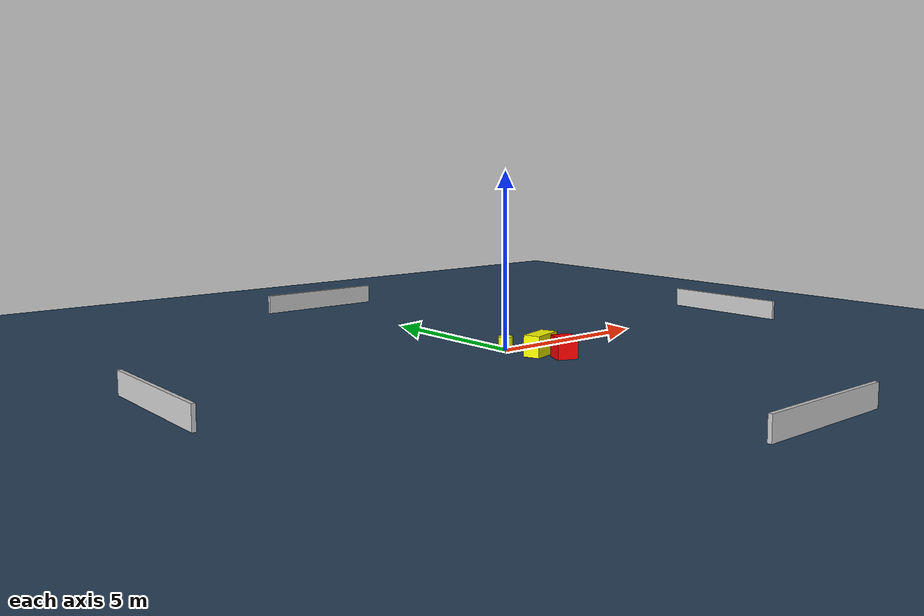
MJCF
<?xml version="1.0" ?>
<mujoco model="generated_environment">
  <option timestep="0.01" integrator="RK4" cone="elliptic"/>
  <default>
    <geom density="1"/>
  </default>
  <asset>
    <texture builtin="gradient" height="3072" name="skybox" rgb1="0.3 0.5 0.7" rgb2="0 0 0" type="skybox" width="512"/>
    <texture builtin="checker" height="300" name="groundplane" rgb1="0.2 0.3 0.4" rgb2="0.1 0.2 0.3" type="2d" width="300"/>
    <material name="groundplane" reflectance="0.2" texrepeat="5 5" texture="groundplane"/>
  </asset>
  <worldbody>
    <light dir="0 0 -1" directional="true" pos="0 0 1.5"/>
    <geom condim="3" friction="0.5 0.005 0.001" material="groundplane" name="floor" pos="0 0 0" size="0 0 0.05" type="plane"/>
    <body name="walls">
      <geom name="wall_1" condim="4" pos="-10.0 0.0 0.3" rgba="0.800000011920929 0.800000011920929 0.800000011920929 1.0" size="0.05 2.0 0.3" type="box"/>
      <geom name="wall_2" condim="4" pos="10.0 0.0 0.3" rgba="0.800000011920929 0.800000011920929 0.800000011920929 1.0" size="0.05 2.0 0.3" type="box"/>
      <geom name="wall_3" condim="4" pos="0.0 -10.0 0.3" rgba="0.800000011920929 0.800000011920929 0.800000011920929 1.0" size="2.0 0.05 0.3" type="box"/>
      <geom name="wall_4" condim="4" pos="0.0 10.0 0.3" rgba="0.800000011920929 0.800000011920929 0.800000011920929 1.0" size="2.0 0.05 0.3" type="box"/>
    </body>
    <body name="robot">
      <joint name="joint_x" type="slide" pos="0 0 0" axis="1 0 0"/>
      <joint name="joint_y" type="slide" pos="0 0 0" axis="0 1 0"/>
      <geom name="robot" type="cylinder" pos="0.0 0.0 0.2" size="0.2 0.2 0.0" mass="5.0" friction="1.0 0.005 0.0001" condim="4" rgba="1.0 1.0 0.0 1.0"/>
    </body>
    <body name="obstacle_1_movable">
      <geom name="obstacle_1_movable" condim="4" pos="0.33996540860509566 -1.0635400363757161 0.3" euler="0 0 196.7336120759501" friction="0.0 0.005 0.001" rgba="1.0 1.0 0.0 1.0" size="0.48385564213212895 0.23703494875631467 0.3" type="box" mass="0.1"/>
      <joint type="free"/>
    </body>
    <body name="obstacle_2_static">
      <geom name="obstacle_2_static" condim="4" pos="0.5546529294893892 -1.7868683998393111 0.3" euler="0 0 68.29313328785655" friction="0.0 0.005 0.001" rgba="1.0 0.0 0.0 1.0" size="0.27804052443600447 0.2910309319036104 0.3" type="box"/>
    </body>
  </worldbody>
  <actuator>
    <motor name="actuator_x" joint="joint_x" gear="1" ctrlrange="-1 1"/>
    <motor name="actuator_y" joint="joint_y" gear="1" ctrlrange="-1 1"/>
  </actuator>
</mujoco>
